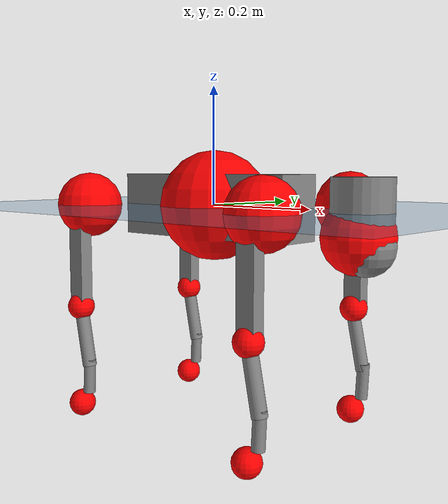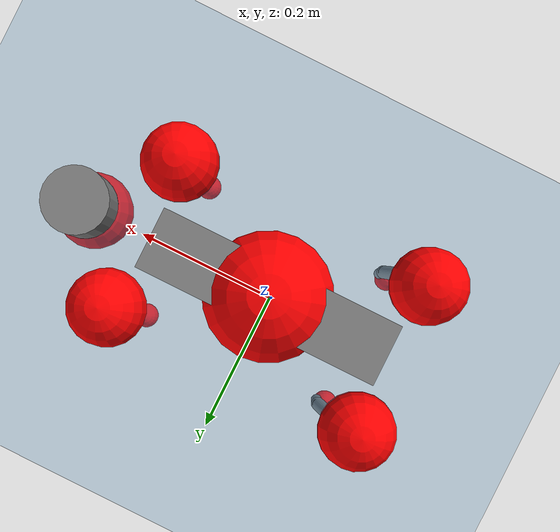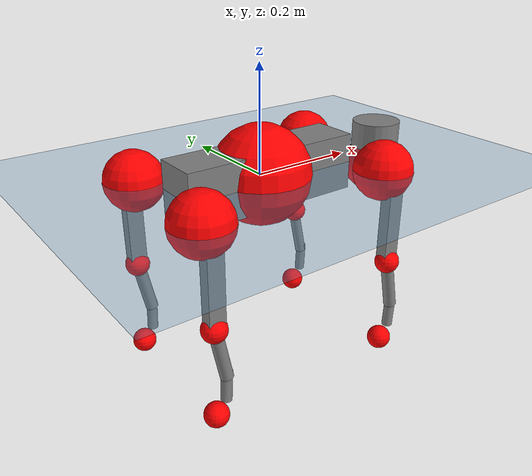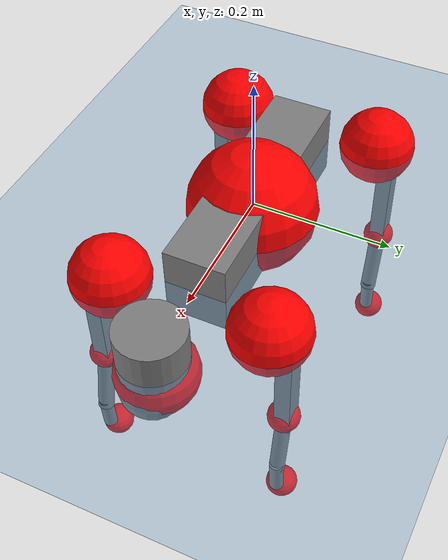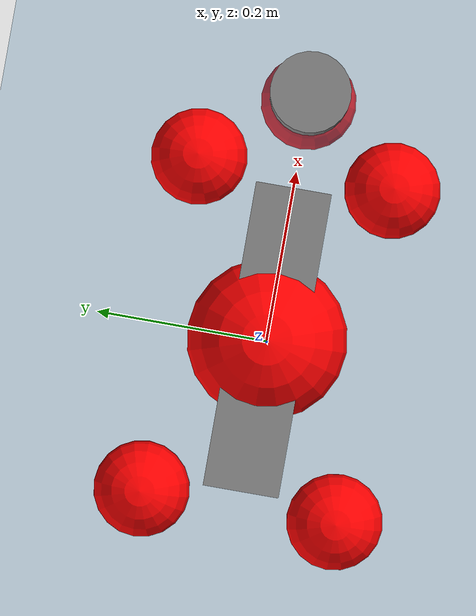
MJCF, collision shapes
<mujoco model="go2">
  <compiler angle="radian" assetdir="assets" balanceinertia="true" inertiafromgeom="false"/>

  <option timestep="0.005" density="1.2" viscosity="2e-05"/>

  <size nkey="1"/>

  <visual>
    <quality shadowsize="8192"/>
    <map shadowclip="0.5"/>
  </visual>

  <default>
    <default class="/">
      <geom contype="0" conaffinity="0" group="1" solref="-1000 -80"/>
      <site size="0.01 0.005 0.005" group="5"/>
      <general forcelimited="true" biastype="affine" gainprm="20" biasprm="0 -20 -0.5"/>
      <default class="go2">
        <joint armature="0.01" damping="0.01" frictionloss="0.2"/>
        <geom condim="1" margin="0.001"/>
        <default class="visual">
          <geom type="mesh" group="2"/>
        </default>
        <default class="collision">
          <geom group="3"/>
          <default class="foot">
            <geom size="0.022 0 0" condim="6" priority="1" friction="0.8 0.02 0.01" solimp="0.015 1 0.022"/>
          </default>
        </default>
        <default class="reward_collision_sphere">
          <geom group="5" rgba="1 0 0 1"/>
        </default>
      </default>
    </default>
  </default>

  <asset>
    <texture type="skybox" colorspace="auto" name="//unnamed_texture_0" builtin="gradient" rgb1="0.95 0.95 0.95" rgb2="0.95 0.95 0.95" width="100" height="600"/>
    <texture type="2d" colorspace="auto" name="texplane" builtin="checker" rgb1="0.345 0.575 0.748" rgb2="0.345 0.575 0.748" markrgb="1 1 1" width="512" height="512"/>
    <material name="MatPlane" class="/" texture="texplane" texuniform="true" texrepeat="2 2" specular="0.9"/>
    <material name="metal" class="/" rgba="0.9 0.95 0.95 1"/>
    <material name="black" class="/" rgba="0 0 0 1"/>
    <material name="white" class="/"/>
    <material name="gray" class="/" rgba="0.671705 0.692426 0.77427 1"/>
    <mesh name="base_0" class="/" file="base_0.obj"/>
    <mesh name="base_1" class="/" file="base_1.obj"/>
    <mesh name="base_2" class="/" file="base_2.obj"/>
    <mesh name="base_3" class="/" file="base_3.obj"/>
    <mesh name="base_4" class="/" file="base_4.obj"/>
    <mesh name="hip_0" class="/" file="hip_0.obj"/>
    <mesh name="hip_1" class="/" file="hip_1.obj"/>
    <mesh name="thigh_0" class="/" file="thigh_0.obj"/>
    <mesh name="thigh_1" class="/" file="thigh_1.obj"/>
    <mesh name="thigh_mirror_0" class="/" file="thigh_mirror_0.obj"/>
    <mesh name="thigh_mirror_1" class="/" file="thigh_mirror_1.obj"/>
    <mesh name="calf_0" class="/" file="calf_0.obj"/>
    <mesh name="calf_1" class="/" file="calf_1.obj"/>
    <mesh name="calf_mirror_0" class="/" file="calf_mirror_0.obj"/>
    <mesh name="calf_mirror_1" class="/" file="calf_mirror_1.obj"/>
    <mesh name="foot" class="/" file="foot.obj"/>
  </asset>

  <worldbody>
    <geom name="floor" class="/" size="100 100 0.125" type="plane" group="0" material="MatPlane"/>
    <light name="toplight_shadow" class="/" pos="0 0 5" dir="0.0990148 0.0990148 -0.990148" type="directional" ambient="0.04 0.04 0.04" diffuse="0.55 0.55 0.55" specular="0.12 0.12 0.12"/>
    <light name="toplight_fill" class="/" pos="0 0 5" dir="0.0990148 0.0990148 -0.990148" type="directional" castshadow="false" ambient="0.04 0.04 0.04" diffuse="0.3 0.3 0.3" specular="0.08 0.08 0.08"/>
    <body name="trunk" childclass="go2" pos="0.002631 -0.000364176 -0.000352644" quat="0.999999 -0.000617751 -0.000657815 0.000980021">
      <inertial pos="0.0184845 0.000222039 -0.00420497" quat="-0.00133277 0.710992 0.00128525 0.703198" mass="5.503" diaginertia="0.112681 0.0835314 0.00973179"/>
      <joint name="//unnamed_joint_0" type="free" armature="0" damping="0" frictionloss="0"/>
      <geom name="//unnamed_geom_1" class="visual" material="black" mesh="base_0"/>
      <geom name="//unnamed_geom_2" class="visual" material="black" mesh="base_1"/>
      <geom name="//unnamed_geom_3" class="visual" material="black" mesh="base_2"/>
      <geom name="//unnamed_geom_4" class="visual" material="white" mesh="base_3"/>
      <geom name="//unnamed_geom_5" class="visual" material="gray" mesh="base_4"/>
      <geom name="trunk_1" class="collision" size="0.176468 0.0438589 0.0534751" type="box"/>
      <geom name="trunk_2" class="collision" size="0.046908 0.0422172" pos="0.288221 0 0.00833811" type="cylinder"/>
      <geom name="trunk_3" class="collision" size="0.0440935" pos="0.296312 0 -0.0500286"/>
      <geom name="//unnamed_geom_9" class="reward_collision_sphere" size="0.0938159"/>
      <geom name="//unnamed_geom_10" class="reward_collision_sphere" size="0.0562896" pos="0.283165 0 -0.0375215"/>
      <site name="imu" pos="-0.0268961 0.00446138 0.048441" size="0.00938159"/>
      <camera name="track" pos="0 -1.93873 0" quat="0.707107 0.707107 0 0" mode="trackcom"/>
      <camera name="ego_camera" pos="0.315527 0 0.0375215" quat="-0.5 -0.5 0.5 0.5"/>
      <body name="FL_hip" pos="0.195996 0.0467774 0.00196603" quat="1 3.06089e-06 1.23968e-05 -3.05844e-05">
        <inertial pos="-0.00653309 0.000226152 0.000745277" quat="0.49701 0.49942 0.505342 0.498187" mass="0.550054" diaginertia="0.000953008 0.000507768 0.000193306"/>
        <joint name="FL_hip_joint" pos="0 0 0" axis="0.999901 -0.00603667 0.0127432" range="-0.995707 1.05409" armature="0.00924629" damping="0.0117537" frictionloss="0.187644"/>
        <geom name="//unnamed_geom_11" class="visual" material="metal" mesh="hip_0"/>
        <geom name="//unnamed_geom_12" class="visual" material="gray" mesh="hip_1"/>
        <geom name="//unnamed_geom_13" class="collision" size="0.0431553 0.0187632" pos="0 0.0775491 0" quat="0.707107 0.707107 0 0" type="cylinder"/>
        <geom name="//unnamed_geom_14" class="reward_collision_sphere" size="0.0562896" pos="0 0.0678555 0"/>
        <body name="FL_thigh" pos="-0.000656512 0.0925942 0.00250003" quat="0.999999 0.00112276 -0.000120849 -0.00018032">
          <inertial pos="-0.00222479 -0.0229798 -0.0297804" quat="0.829582 0.0845162 -0.0199514 0.551591" mass="0.921848" diaginertia="0.00617393 0.00489379 0.000356411"/>
          <joint name="FL_thigh_joint" pos="0 0 0" axis="0.000542382 0.99996 -0.00895226" range="-1.55891 3.48952" armature="0.00947198" damping="0.00898862" frictionloss="0.192969"/>
          <geom name="//unnamed_geom_15" class="visual" material="metal" mesh="thigh_0"/>
          <geom name="//unnamed_geom_16" class="visual" material="gray" mesh="thigh_1"/>
          <geom name="//unnamed_geom_17" class="collision" size="0.099914 0.0114925 0.0159487" pos="0 0 -0.0888008" quat="0.707107 0 0.707107 0" type="box"/>
          <body name="FL_calf" pos="-0.000908625 -0.00299818 -0.17694" quat="1 1.11223e-05 0.000368778 0.000553305">
            <inertial pos="0.00404821 -0.000273199 -0.115565" quat="0.710611 0.00161295 -0.00592857 0.703558" mass="0.199013" diaginertia="0.00160287 0.00131784 2.18682e-05"/>
            <joint name="FL_calf_joint" pos="0 0 0" axis="0.00936694 0.999947 0.00418298" stiffness="0.00858255" range="-2.77742 -0.83147" armature="0.00965456" damping="0" frictionloss="0.194823"/>
            <geom name="//unnamed_geom_18" class="visual" material="gray" mesh="calf_0"/>
            <geom name="//unnamed_geom_19" class="visual" material="black" mesh="calf_1"/>
            <geom name="FL_calf0" class="collision" size="0.0112579 0.0562896" pos="0.00809043 0 -0.0500286" quat="0.994493 0 -0.104807 0" type="cylinder"/>
            <geom name="//unnamed_geom_21" class="collision" size="0.0103198 0.0304902" pos="0.0202261 0 -0.123404" quat="0.999688 0 0.0249974 0" type="cylinder"/>
            <geom name="//unnamed_geom_22" class="visual" pos="0 0 -0.177602" quat="1 0 0 0" material="black" mesh="foot"/>
            <geom name="FL_foot" class="foot" size="0.0184493" pos="-0.00202261 0 -0.177602"/>
            <geom name="//unnamed_geom_24" class="reward_collision_sphere" size="0.023454"/>
            <geom name="//unnamed_geom_25" class="reward_collision_sphere" size="0.023454" pos="-0.00202261 0 -0.177602"/>
            <site name="FL_foot" class="foot" pos="-0.00202261 0 -0.177602" size="0.00938159"/>
          </body>
        </body>
      </body>
      <body name="FR_hip" pos="0.195575 -0.0460039 -0.00205289" quat="0.999999 0.000367245 -0.000796071 0.000521526">
        <inertial pos="-0.00432885 -0.00443269 -0.000346355" quat="0.488879 0.511945 0.497732 0.501172" mass="0.553828" diaginertia="0.000899003 0.000503548 0.000187298"/>
        <joint name="FR_hip_joint" pos="0 0 0" axis="0.999966 -0.00680464 -0.00459659" stiffness="0.0026684" range="-1.06206 1.0519" armature="0.00898819" damping="0.0146565" frictionloss="0.16442"/>
        <geom name="//unnamed_geom_26" class="visual" pos="0 1.18088e-09 5.06505e-08" quat="4.63268e-05 1 0 0" material="metal" mesh="hip_0"/>
        <geom name="//unnamed_geom_27" class="visual" pos="0 1.91435e-09 -1.25278e-07" quat="4.63268e-05 1 0 0" material="gray" mesh="hip_1"/>
        <geom name="//unnamed_geom_28" class="collision" size="0.0431553 0.0187632" pos="0 -0.0775491 0" quat="0.707107 0.707107 0 0" type="cylinder"/>
        <geom name="//unnamed_geom_29" class="reward_collision_sphere" size="0.0562896" pos="0 -0.0678555 0"/>
        <body name="FR_thigh" pos="0.000594287 -0.0951787 -0.000994169" quat="1 -0.000177613 -9.7517e-05 -0.000253008">
          <inertial pos="-0.00246037 0.0196004 -0.0272666" quat="0.54918 -0.0250372 0.07946 0.831541" mass="0.962667" diaginertia="0.00625207 0.00501853 0.000362959"/>
          <joint name="FR_thigh_joint" pos="0 0 0" axis="-0.00239556 -0.999993 -0.00271545" range="-3.48039 1.61531" armature="0.00937333" damping="0.0154132" frictionloss="0.189102"/>
          <geom name="//unnamed_geom_30" class="visual" material="metal" mesh="thigh_mirror_0"/>
          <geom name="//unnamed_geom_31" class="visual" material="gray" mesh="thigh_mirror_1"/>
          <geom name="//unnamed_geom_32" class="collision" size="0.099914 0.0114925 0.0159487" pos="0 0 -0.0888008" quat="0.707107 0 0.707107 0" type="box"/>
          <body name="FR_calf" pos="0.000146643 -0.00278809 -0.177169" quat="1 -3.50793e-05 6.51478e-05 -6.08934e-06">
            <inertial pos="0.00665242 0.00103915 -0.118112" quat="0.710365 -0.0012976 -0.00657355 0.703802" mass="0.197526" diaginertia="0.00156973 0.00125078 2.08486e-05"/>
            <joint name="FR_calf_joint" pos="0 0 0" axis="0.000908567 -0.999908 0.0135503" range="0.84452 2.76064" armature="0.00967852" damping="0.0242485" frictionloss="0.189357"/>
            <geom name="//unnamed_geom_33" class="visual" material="gray" mesh="calf_mirror_0"/>
            <geom name="//unnamed_geom_34" class="visual" material="black" mesh="calf_mirror_1"/>
            <geom name="FR_calf0" class="collision" size="0.0121961 0.0562896" pos="0.010113 0 -0.0500286" quat="0.995004 0 -0.0998334 0" type="cylinder"/>
            <geom name="//unnamed_geom_36" class="collision" size="0.0103198 0.0304902" pos="0.0202261 0 -0.123404" quat="0.999688 0 0.0249974 0" type="cylinder"/>
            <geom name="//unnamed_geom_37" class="visual" pos="0 0 -0.177602" quat="1 0 0 0" material="black" mesh="foot"/>
            <geom name="FR_foot" class="foot" size="0.022532" pos="-0.00202261 0 -0.177602"/>
            <geom name="//unnamed_geom_39" class="reward_collision_sphere" size="0.023454"/>
            <geom name="//unnamed_geom_40" class="reward_collision_sphere" size="0.023454" pos="-0.00202261 0 -0.177602"/>
            <site name="FR_foot" class="foot" pos="-0.00202261 0 -0.177602" size="0.00938159"/>
          </body>
        </body>
      </body>
      <body name="RL_hip" pos="-0.19645 0.0460685 -0.0022779" quat="1 0.000239745 -0.00045007 0.000326863">
        <inertial pos="0.00497945 0.00489849 -0.00181107" quat="0.500262 0.494516 0.494775 0.510283" mass="0.570982" diaginertia="0.000924244 0.000500879 0.000197212"/>
        <joint name="RL_hip_joint" pos="0 0 0" axis="-0.999859 0.00918793 -0.0140908" stiffness="0.00871942" range="-1.04049 1.02023" armature="0.00833497" damping="0.0110808" frictionloss="0.212048"/>
        <geom name="//unnamed_geom_41" class="visual" pos="-1.54624e-09 0 -3.03099e-07" quat="4.63268e-05 0 1 0" material="metal" mesh="hip_0"/>
        <geom name="//unnamed_geom_42" class="visual" pos="-2.50664e-09 0 -2.68806e-07" quat="4.63268e-05 0 1 0" material="gray" mesh="hip_1"/>
        <geom name="//unnamed_geom_43" class="collision" size="0.0431553 0.0187632" pos="0 0.0775491 0" quat="0.707107 0.707107 0 0" type="cylinder"/>
        <geom name="//unnamed_geom_44" class="reward_collision_sphere" size="0.0562896" pos="0 0.0678555 0"/>
        <body name="RL_thigh" pos="-0.000368637 0.0891784 0.00214956" quat="1 -3.52507e-05 0.000150433 5.42988e-05">
          <inertial pos="-0.00378923 -0.0212084 -0.0282109" quat="0.830361 0.0855405 -0.0220406 0.550179" mass="0.970772" diaginertia="0.00625829 0.00488631 0.000356754"/>
          <joint name="RL_thigh_joint" pos="0 0 0" axis="-0.0100506 0.999948 0.00187734" stiffness="0.0102904" range="-0.514601 4.5451" armature="0.0103461" damping="0.00429311" frictionloss="0.186805"/>
          <geom name="//unnamed_geom_45" class="visual" material="metal" mesh="thigh_0"/>
          <geom name="//unnamed_geom_46" class="visual" material="gray" mesh="thigh_1"/>
          <geom name="//unnamed_geom_47" class="collision" size="0.099914 0.0114925 0.0159487" pos="0 0 -0.0888008" quat="0.707107 0 0.707107 0" type="box"/>
          <body name="RL_calf" pos="-1.00353e-05 -0.000245708 -0.180378" quat="1 -7.06718e-05 -0.000442938 -2.44002e-05">
            <inertial pos="0.00689464 0.00222301 -0.117258" quat="0.712109 0.00332479 -0.00717473 0.702025" mass="0.197793" diaginertia="0.00154521 0.00124971 2.05291e-05"/>
            <joint name="RL_calf_joint" pos="0 0 0" axis="0.00184285 0.999991 0.0038037" range="-2.72512 -0.83159" armature="0.00981944" damping="0" frictionloss="0.212822"/>
            <geom name="//unnamed_geom_48" class="visual" material="gray" mesh="calf_0"/>
            <geom name="//unnamed_geom_49" class="visual" material="black" mesh="calf_1"/>
            <geom name="RL_calf0" class="collision" size="0.0121961 0.0562896" pos="0.010113 0 -0.0500286" quat="0.995004 0 -0.0998334 0" type="cylinder"/>
            <geom name="//unnamed_geom_51" class="collision" size="0.0103198 0.0304902" pos="0.0202261 0 -0.123404" quat="0.999688 0 0.0249974 0" type="cylinder"/>
            <geom name="//unnamed_geom_52" class="visual" pos="0 0 -0.177602" quat="1 0 0 0" material="black" mesh="foot"/>
            <geom name="RL_foot" class="foot" size="0.0171997" pos="-0.00202261 0 -0.177602"/>
            <geom name="//unnamed_geom_54" class="reward_collision_sphere" size="0.023454"/>
            <geom name="//unnamed_geom_55" class="reward_collision_sphere" size="0.023454" pos="-0.00202261 0 -0.177602"/>
            <site name="RL_foot" class="foot" pos="-0.00202261 0 -0.177602" size="0.00938159"/>
          </body>
        </body>
      </body>
      <body name="RR_hip" pos="-0.196019 -0.0462482 -0.000890213" quat="0.999999 5.52479e-06 0.00115315 -0.000175839">
        <inertial pos="0.00806701 0.000305962 -0.00286147" quat="0.501916 0.489055 0.499997 0.50883" mass="0.55881" diaginertia="0.000932472 0.000506551 0.000193017"/>
        <joint name="RR_hip_joint" pos="0 0 0" axis="-0.9999 0.0139814 0.00201904" stiffness="0.00452876" range="-1.05373 1.03313" armature="0.0091895" damping="0.0136141" frictionloss="0.178872"/>
        <geom name="//unnamed_geom_56" class="visual" pos="1.54479e-09 1.18088e-09 -3.5375e-07" quat="2.14617e-09 4.63268e-05 4.63268e-05 -1" material="metal" mesh="hip_0"/>
        <geom name="//unnamed_geom_57" class="visual" pos="2.51023e-09 1.91435e-09 -1.43528e-07" quat="2.14617e-09 4.63268e-05 4.63268e-05 -1" material="gray" mesh="hip_1"/>
        <geom name="//unnamed_geom_58" class="collision" size="0.0431553 0.0187632" pos="0 -0.0775491 0" quat="0.707107 0.707107 0 0" type="cylinder"/>
        <geom name="//unnamed_geom_59" class="reward_collision_sphere" size="0.0562896" pos="0 -0.0678555 0"/>
        <body name="RR_thigh" pos="0.00113439 -0.0918835 -0.00250002" quat="1 -0.000215977 7.79677e-05 -0.000165376">
          <inertial pos="-0.00292914 0.0213526 -0.0273036" quat="0.551567 -0.0202444 0.0852289 0.829518" mass="0.922428" diaginertia="0.00636511 0.00510496 0.000353661"/>
          <joint name="RR_thigh_joint" pos="0 0 0" axis="0.0121106 -0.999914 -0.00511113" range="-4.53355 0.574646" armature="0.00940036" damping="0.0105955" frictionloss="0.178627"/>
          <geom name="//unnamed_geom_60" class="visual" material="metal" mesh="thigh_mirror_0"/>
          <geom name="//unnamed_geom_61" class="visual" material="gray" mesh="thigh_mirror_1"/>
          <geom name="//unnamed_geom_62" class="collision" size="0.099914 0.0114925 0.0159487" pos="0 0 -0.0888008" quat="0.707107 0 0.707107 0" type="box"/>
          <body name="RR_calf" pos="-0.000904697 -0.000136758 -0.177649" quat="1 -0.000132665 6.13412e-05 -0.000104798">
            <inertial pos="0.00418053 6.43952e-05 -0.118215" quat="0.702262 -0.000745776 0.00290164 0.711912" mass="0.198362" diaginertia="0.00156814 0.00125854 2.20495e-05"/>
            <joint name="RR_calf_joint" pos="0 0 0" axis="-0.00794344 -0.99981 -0.0178091" range="0.854859 2.73137" armature="0.00988004" damping="0.0237424" frictionloss="0.196959"/>
            <geom name="//unnamed_geom_63" class="visual" material="gray" mesh="calf_mirror_0"/>
            <geom name="//unnamed_geom_64" class="visual" material="black" mesh="calf_mirror_1"/>
            <geom name="RR_calf0" class="collision" size="0.0121961 0.0562896" pos="0.010113 0 -0.0500286" quat="0.995004 0 -0.0998334 0" type="cylinder"/>
            <geom name="//unnamed_geom_66" class="collision" size="0.0103198 0.0304902" pos="0.0202261 0 -0.123404" quat="0.999688 0 0.0249974 0" type="cylinder"/>
            <geom name="//unnamed_geom_67" class="visual" pos="0 0 -0.177602" quat="1 0 0 0" material="black" mesh="foot"/>
            <geom name="RR_foot" class="foot" size="0.0210941" pos="-0.00202261 0 -0.177602"/>
            <geom name="//unnamed_geom_69" class="reward_collision_sphere" size="0.023454"/>
            <geom name="//unnamed_geom_70" class="reward_collision_sphere" size="0.023454" pos="-0.00202261 0 -0.177602"/>
            <site name="RR_foot" class="foot" pos="-0.00202261 0 -0.177602" size="0.00938159"/>
          </body>
        </body>
      </body>
    </body>
  </worldbody>

  <contact>
    <pair class="/" geom1="floor" geom2="FL_foot" name="//unnamed_contact_0"/>
    <pair class="/" geom1="floor" geom2="FR_foot" name="//unnamed_contact_1"/>
    <pair class="/" geom1="floor" geom2="RL_foot" name="//unnamed_contact_2"/>
    <pair class="/" geom1="floor" geom2="RR_foot" name="//unnamed_contact_3"/>
  </contact>

  <actuator>
    <general name="FL_hip" class="/" joint="FL_hip_joint" forcerange="-22.0331 22.0331" gainprm="19.4161" biasprm="0 -19.4161 -0.446373"/>
    <general name="FL_thigh" class="/" joint="FL_thigh_joint" forcerange="-21.6243 21.6243" gainprm="19.4161" biasprm="0 -19.4161 -0.446373"/>
    <general name="FL_calf" class="/" joint="FL_calf_joint" forcerange="-43.4065 43.4065" gainprm="19.4161" biasprm="0 -19.4161 -0.446373"/>
    <general name="FR_hip" class="/" joint="FR_hip_joint" forcerange="-21.7732 21.7732" gainprm="19.4161" biasprm="0 -19.4161 -0.446373"/>
    <general name="FR_thigh" class="/" joint="FR_thigh_joint" forcerange="-22.8727 22.8727" gainprm="19.4161" biasprm="0 -19.4161 -0.446373"/>
    <general name="FR_calf" class="/" joint="FR_calf_joint" forcerange="-41.9344 41.9344" gainprm="19.4161" biasprm="0 -19.4161 -0.446373"/>
    <general name="RL_hip" class="/" joint="RL_hip_joint" forcerange="-24.4325 24.4325" gainprm="19.4161" biasprm="0 -19.4161 -0.446373"/>
    <general name="RL_thigh" class="/" joint="RL_thigh_joint" forcerange="-21.9794 21.9794" gainprm="19.4161" biasprm="0 -19.4161 -0.446373"/>
    <general name="RL_calf" class="/" joint="RL_calf_joint" forcerange="-38.3196 38.3196" gainprm="19.4161" biasprm="0 -19.4161 -0.446373"/>
    <general name="RR_hip" class="/" joint="RR_hip_joint" forcerange="-20.7845 20.7845" gainprm="19.4161" biasprm="0 -19.4161 -0.446373"/>
    <general name="RR_thigh" class="/" joint="RR_thigh_joint" forcerange="-24.4571 24.4571" gainprm="19.4161" biasprm="0 -19.4161 -0.446373"/>
    <general name="RR_calf" class="/" joint="RR_calf_joint" forcerange="-40.7612 40.7612" gainprm="19.4161" biasprm="0 -19.4161 -0.446373"/>
  </actuator>

  <sensor>
    <gyro site="imu" name="imu_angular_velocity"/>
    <velocimeter site="imu" name="imu_linear_velocity"/>
    <framelinvel objtype="site" objname="FL_foot" name="FL_foot_global_linear_velocity"/>
    <framelinvel objtype="site" objname="FR_foot" name="FR_foot_global_linear_velocity"/>
    <framelinvel objtype="site" objname="RL_foot" name="RL_foot_global_linear_velocity"/>
    <framelinvel objtype="site" objname="RR_foot" name="RR_foot_global_linear_velocity"/>
  </sensor>

  <keyframe>
    <key name="home" qpos="0 0 0.325 1 0 0 0 0.1 0.8 -1.5 -0.1 -0.8 1.5 -0.1 0.8 -1.5 0.1 -0.8 1.5"/>
  </keyframe>
</mujoco>
